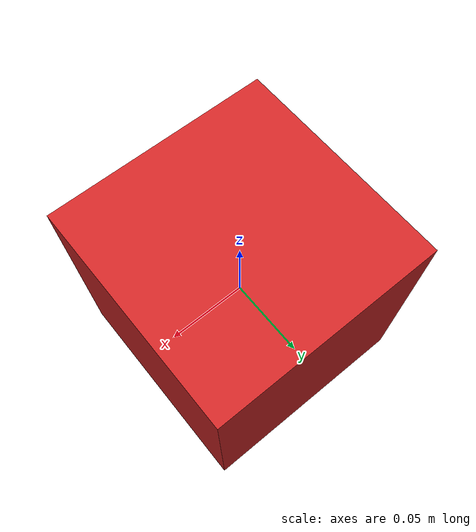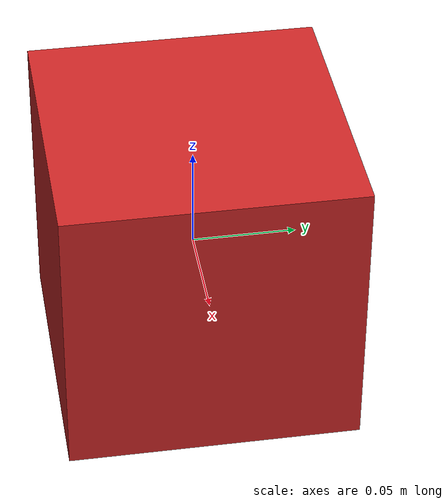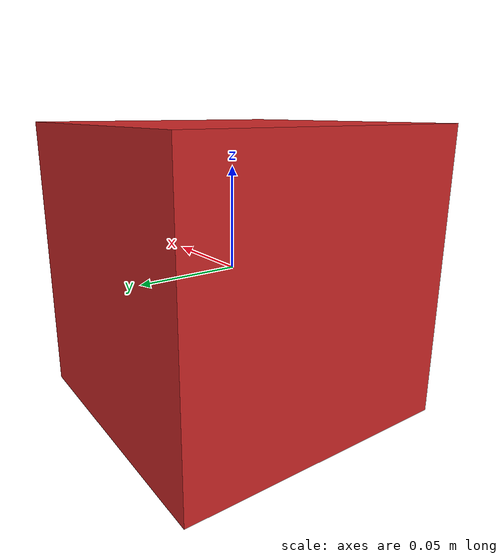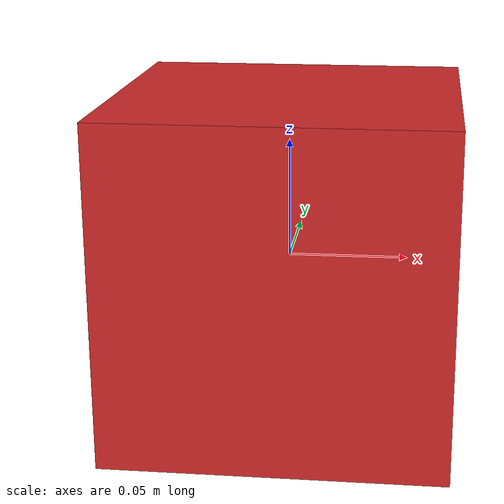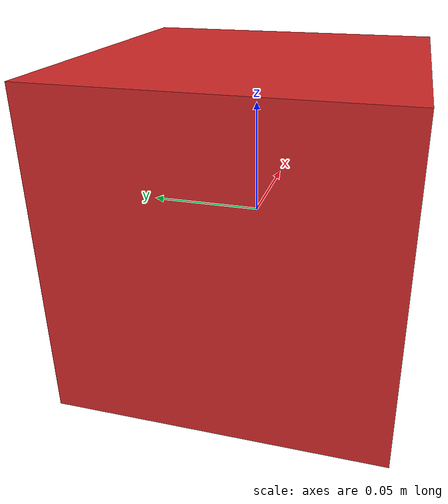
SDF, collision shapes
<?xml version="1.0" ?>
<sdf version="1.5">
  <model name="test1">

    <link name="base">

      <inertial>
        <pose>0 0 0 0 0 0</pose>
        <inertia>
          <ixx>0.001</ixx>
          <ixy>0.000</ixy>
          <ixz>0.000</ixz>
          <iyy>0.001</iyy>
          <iyz>0.000</iyz>
          <izz>0.001</izz>
        </inertia>
        <mass>1.0</mass>
      </inertial>

      <collision name="base_collision">
        <pose>0 0 0 0 0 0</pose>
        <geometry>
          <box>
            <size>0.140 0.140 0.140</size>
          </box>
        </geometry>
      </collision>

      <visual name="base_visual">
        <pose>0 0 -0.0735 1.57 0 0</pose>
        <geometry>
          <mesh>
            <uri>model://test1/meshes/ROBOT4.stl</uri>
            <scale>0.001 0.001 0.001</scale>
          </mesh>
        </geometry>
          <material>
            <script>
              <uri>file://media/materials/scripts/gazebo.material</uri>
              <name>Gazebo/Red</name>
            </script>
          </material>
      </visual>

      <collision name="caster_collision">
        <pose>0 0 0 0 0 0</pose>
        <geometry>
          <sphere>
            <radius>0.005000</radius>
          </sphere>
        </geometry>
        <surface>
          <friction>
            <ode>
              <mu>100000.0</mu>
              <mu2>100000.0</mu2>
              <fdir1>0 0 0</fdir1>
              <slip1>0</slip1>
              <slip2>0</slip2>
            </ode>
          </friction>
        </surface>
      </collision>
    </link>

    <link name="lidar">

    <inertial>
      <pose>0 0 0 0 0 0</pose>
      <inertia>
        <ixx>0.001</ixx>
        <ixy>0.000</ixy>
        <ixz>0.000</ixz>
        <iyy>0.001</iyy>
        <iyz>0.000</iyz>
        <izz>0.001</izz>
      </inertia>
      <mass>0.125</mass>
    </inertial>

    <collision name="lidar_sensor_collision">
        <pose>0 0 0 0 0 0</pose>
        <geometry>
          <cylinder>
            <radius>0.0508</radius>
            <length>0.055</length>
          </cylinder>
        </geometry>
      </collision>

      <visual name="lidar_sensor_visual">
        <pose>0.2375 -0.3435 0.15 1.57 0 -1.55</pose>
        <geometry>
          <mesh>
            <uri>model://test1/meshes/rplidar.stl</uri>
            <scale>0.001 0.001 0.001</scale>
          </mesh>
        </geometry>
          <material>
            <script>
              <uri>file://media/materials/scripts/gazebo.material</uri>
              <name>Gazebo/Gray</name>
            </script>
          </material>
      </visual>

      <sensor name="lidar_sensor" type="ray">
        <pose>-0.032 0 0.171 0 0 0</pose>
        <ray>
          <scan>
            <horizontal>
              <samples>360</samples>
              <resolution>1.000000</resolution>
              <min_angle>0.000000</min_angle>
              <max_angle>6.280000</max_angle>
            </horizontal>
          </scan>
          <range>
            <min>0.120000</min>
            <max>3.5</max>
            <resolution>0.015000</resolution>
          </range>
          <noise>
            <type>gaussian</type>
            <mean>0.0</mean>
            <stddev>0.01</stddev>
          </noise>
        </ray>
	<plugin name="lidar_sensor" filename="libRayPlugin.so" />
        <always_on>1</always_on>
        <update_rate>1800</update_rate>
        <visualize>false</visualize>
      </sensor>
    </link>

    <link name="left_wheel">

      <inertial>
        <pose>0 0 0 0 0 0</pose>
        <inertia>
          <ixx>0.001</ixx>
          <ixy>0.000</ixy>
          <ixz>0.000</ixz>
          <iyy>0.001</iyy>
          <iyz>0.000</iyz>
          <izz>0.001</izz>
        </inertia>
        <mass>0.1</mass>
      </inertial>

      <collision name="left_wheel_collision">
        <pose>0 0 0 0 0 0</pose>
        <geometry>
          <cylinder>
            <radius>0.033</radius>
            <length>0.018</length>
          </cylinder>
        </geometry>
          <surface>
            <friction>
              <ode>
                <mu>100000.0</mu>
                <mu2>100000.0</mu2>
                <fdir1>0 0 0</fdir1>
                <slip1>0.0</slip1>
                <slip2>0.0</slip2>
              </ode>
          </friction>
        </surface>
      </collision>

      <visual name="left_wheel_visual">
        <pose>0.012 -0.3735 -0.066 0 0 0</pose>
        <geometry>
          <mesh>
            <uri>model://test1/meshes/wheel3.stl</uri>
            <scale>0.001 0.001 0.001</scale>
          </mesh>
        </geometry>
          <material>
            <script>
              <uri>file://media/materials/scripts/gazebo.material</uri>
              <name>Gazebo/Blue</name>
            </script>
          </material>
      </visual>
    </link>

    <link name="right_wheel">

      <inertial>
        <pose>0 0 0 0 0 0</pose>
        <inertia>
          <ixx>0.001</ixx>
          <ixy>0.000</ixy>
          <ixz>0.000</ixz>
          <iyy>0.001</iyy>
          <iyz>0.000</iyz>
          <izz>0.001</izz>
        </inertia>
        <mass>0.1</mass>
      </inertial>

      <collision name="right_wheel_collision">
        <pose>0 0 0 0 0 0</pose>
        <geometry>
          <cylinder>
            <radius>0.033</radius>
            <length>0.018</length>
          </cylinder>
        </geometry>
          <surface>
            <friction>
              <ode>
                <mu>100000.0</mu>
                <mu2>100000.0</mu2>
                <fdir1>0 0 0</fdir1>
                <slip1>0.0</slip1>
                <slip2>0.0</slip2>
              </ode>
          </friction>
        </surface>
      </collision>

      <visual name="right_wheel_visual">
        <pose>0.363 -0.3735 -0.066 0 0 0</pose>
        <geometry>
          <mesh>
            <uri>model://test1/meshes/wheel3.stl</uri>
            <scale>0.001 0.001 0.001</scale>
          </mesh>
        </geometry>
          <material>
            <script>
              <uri>file://media/materials/scripts/gazebo.material</uri>
              <name>Gazebo/Blue</name>
            </script>
          </material>
      </visual>
    </link>

    <joint name="left_wheel_joint" type="revolute">
      <parent>base</parent>
      <child>left_wheel</child>
      <pose>0 0 0 0 0 0</pose>
      <axis>
        <xyz>0 1 0</xyz>
      </axis>
    </joint>

    <joint name="right_wheel_joint" type="revolute">
      <parent>base</parent>
      <child>right_wheel</child>
      <pose>0 0 0 0 0 0</pose>
      <axis>
        <xyz>0 1 0</xyz>
      </axis>
    </joint>

    <joint name="lidar_joint" type="fixed">
      <parent>base</parent>
      <child>lidar</child>
      <pose>0 0 0 0 0 0</pose>
      <axis>
        <xyz>0 0 1</xyz>
        <use_parent_model_frame>true</use_parent_model_frame>
      </axis>
    </joint>

  <static>0</static>

  <plugin name="gazebo_ros_control" filename="libgazebo_ros_control.so">
        <robotNamespace>/test1</robotNamespace>
        <robotSimType>gazebo_ros_control/DefaultRobotHWSim</robotSimType>
    </plugin>

  <transmission name="base_to_second_trans">
    <type>transmission_interface/SimpleTransmission</type>
    <actuator name="motor1">
      <mechanicalReduction>1</mechanicalReduction>
    </actuator>
    <joint name="base_to_second_joint">
      <hardwareInterface>EffortJointInterface</hardwareInterface>
    </joint>
  </transmission>

  </model>
</sdf>
